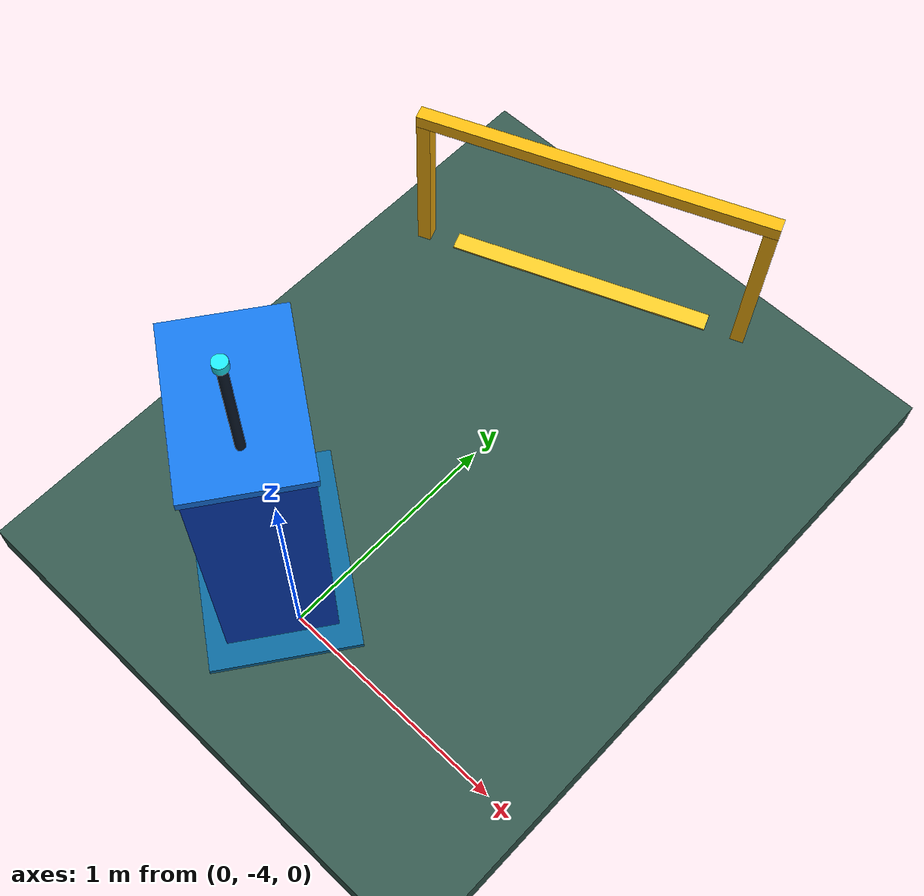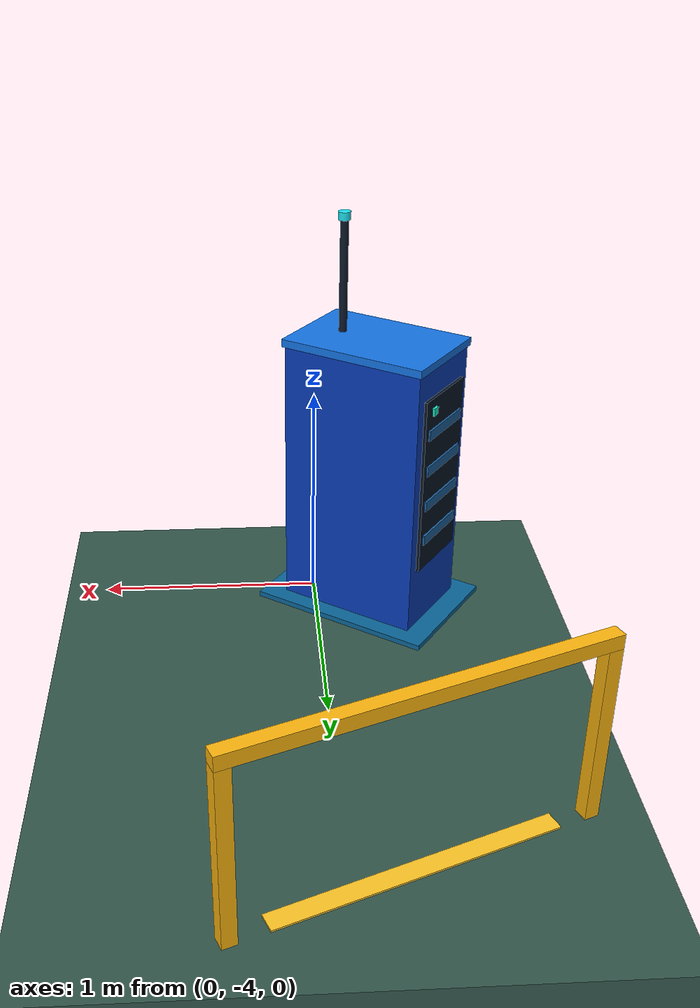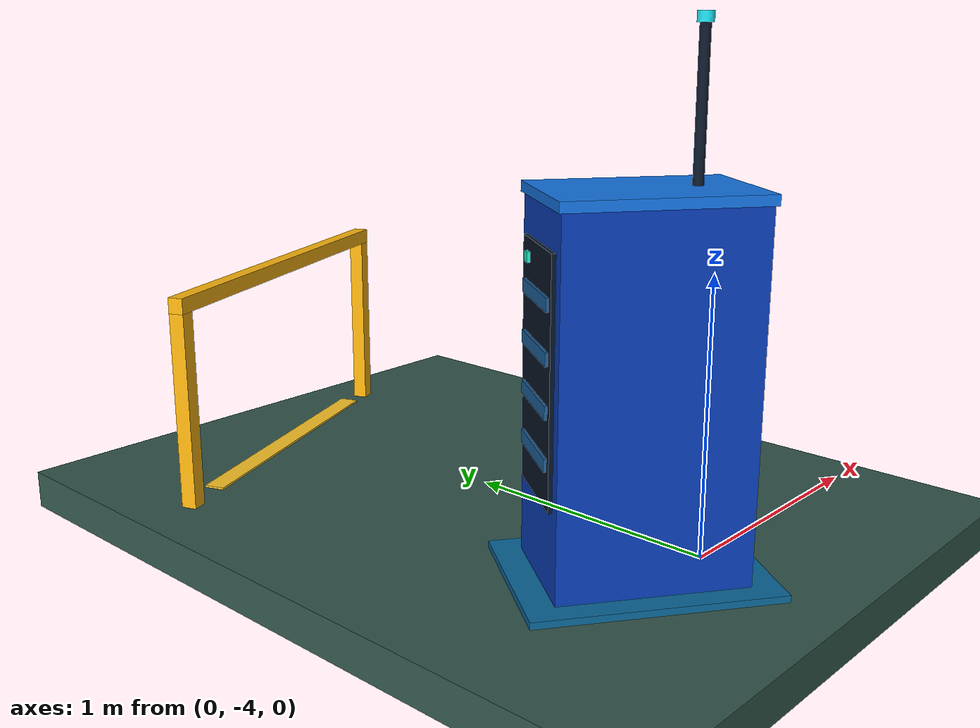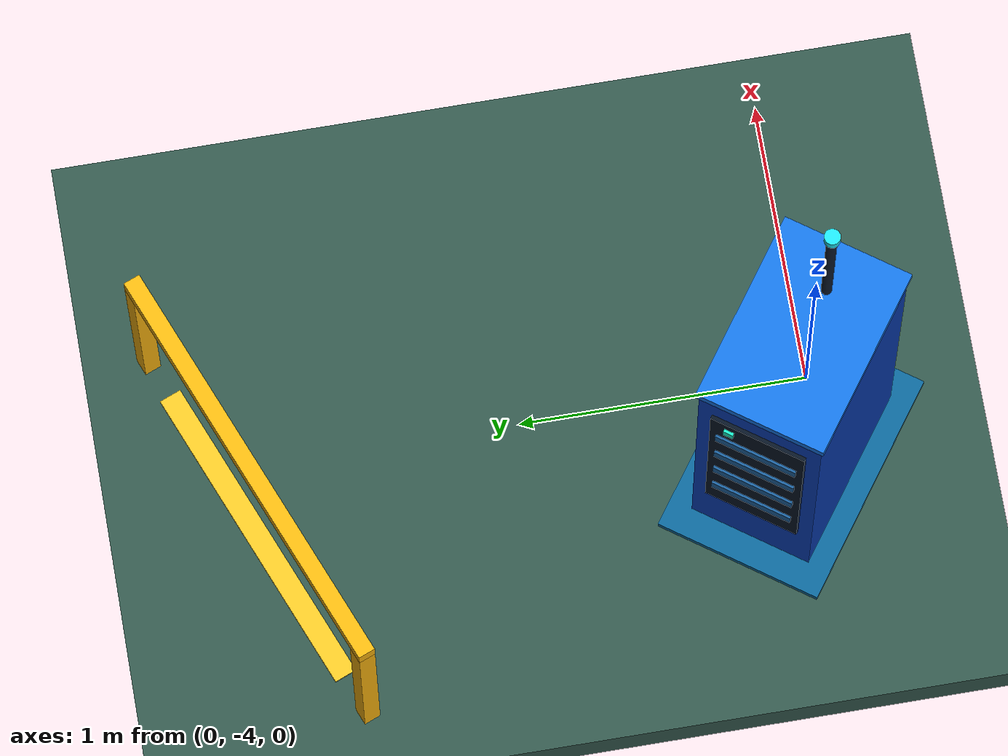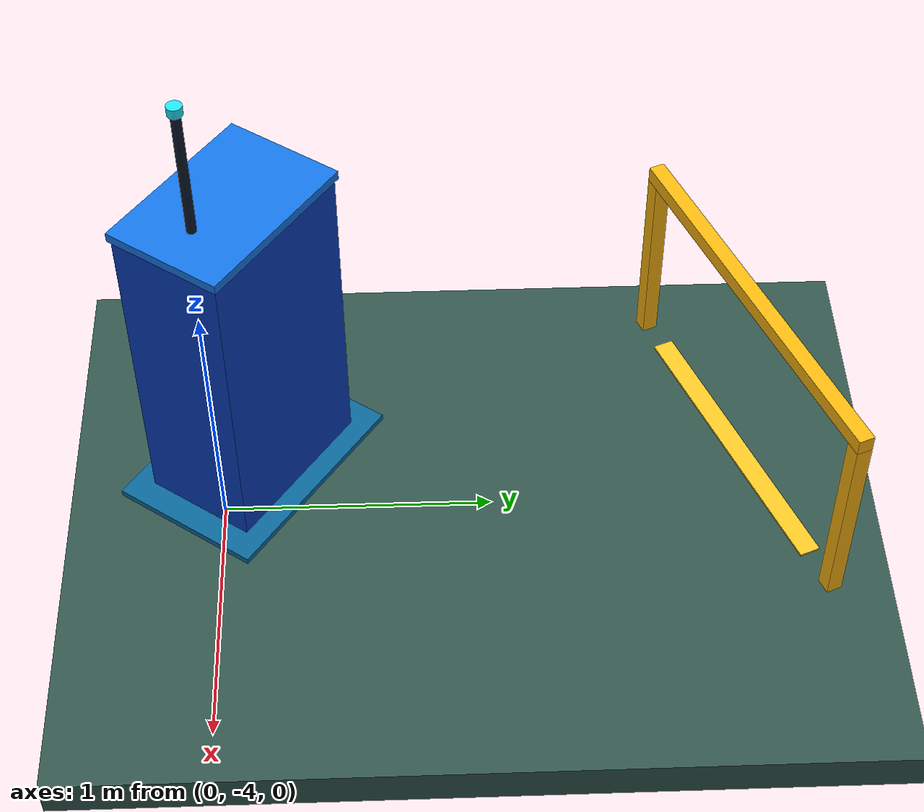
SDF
<sdf version="1.9">
 <world name="monaco">
  <model name="ground">
   <static>true</static>
   <link name="body">
    <visual name="ground">
     <pose>0 0 -0.08 0 0 0</pose>
     <geometry><box><size>100 100 0.15</size></box></geometry>
     <material><ambient>0.20 0.34 0.30 1</ambient><diffuse>0.20 0.34 0.30 1</diffuse></material>
    </visual>
    <collision name="ground_collision">
     <pose>0 0 -0.08 0 0 0</pose>
     <geometry><box><size>100 100 0.15</size></box></geometry>
    </collision>
   </link>
  </model>
  <model name="checkpoint_11">
   <static>true</static>
   <pose>-0.24535137952812047 -2.052995247491349 0 0 0 1.9525162955444766</pose>
   <link name="body">
    <visual name="stripe">
     <pose>0 0 0.016 0 0 0</pose>
     <geometry><box><size>0.08 1.17 0.008</size></box></geometry>
     <material><ambient>1 0.78 0.15 1</ambient><diffuse>1 0.78 0.15 1</diffuse></material>
    </visual>
    <visual name="post_-1">
     <pose>0 -0.73 0.38 0 0 0</pose>
     <geometry><box><size>0.06 0.06 0.76</size></box></geometry>
     <material><ambient>1 0.72 0.06 1</ambient><diffuse>1 0.72 0.06 1</diffuse></material>
    </visual>
    <visual name="post_1">
     <pose>0 0.73 0.38 0 0 0</pose>
     <geometry><box><size>0.06 0.06 0.76</size></box></geometry>
     <material><ambient>1 0.72 0.06 1</ambient><diffuse>1 0.72 0.06 1</diffuse></material>
    </visual>
    <visual name="overhead">
     <pose>0 0 0.79 0 0 0</pose>
     <geometry><box><size>0.06 1.52 0.06</size></box></geometry>
     <material><ambient>1 0.72 0.06 1</ambient><diffuse>1 0.72 0.06 1</diffuse></material>
    </visual>
   </link>
  </model>
  <model name="edge_10">
   <static>true</static>
   <pose>-0.26104164202007485 -3.900169181136712 0 0 0 2.5207701017671225</pose>
   <link name="body">
    <collision name="chassis_collision">
     <pose>0 0 0.14 0 0 0</pose>
     <geometry><box><size>0.64 0.32 0.13</size></box></geometry>
    </collision>
    <visual name="parking_bay">
     <pose>0 0 0.012 0 0 0</pose>
     <geometry><box><size>0.86 0.60 0.025</size></box></geometry>
     <material><ambient>0.04 0.40 0.60 1</ambient><diffuse>0.04 0.40 0.60 1</diffuse></material>
    </visual>
    <visual name="server_cabinet">
     <pose>0 0 0.65 0 0 0</pose>
     <geometry><box><size>0.66 0.44 1.25</size></box></geometry>
     <material><ambient>0.035 0.24 0.72 1</ambient><diffuse>0.035 0.24 0.72 1</diffuse></material>
    </visual>
    <visual name="cabinet_top">
     <pose>0 0 1.285 0 0 0</pose>
     <geometry><box><size>0.68 0.46 0.035</size></box></geometry>
     <material><ambient>0.08 0.46 0.90 1</ambient><diffuse>0.08 0.46 0.90 1</diffuse></material>
    </visual>
    <visual name="front_panel">
     <pose>0.337 0 0.73 0 0 0</pose>
     <geometry><box><size>0.014 0.34 0.82</size></box></geometry>
     <material><ambient>0.025 0.075 0.14 1</ambient><diffuse>0.025 0.075 0.14 1</diffuse></material>
    </visual>
    <visual name="rack_slot_0">
     <pose>0.347 0 0.47 0 0 0</pose>
     <geometry><box><size>0.012 0.29 0.045</size></box></geometry>
     <material><ambient>0.11 0.38 0.62 1</ambient><diffuse>0.11 0.38 0.62 1</diffuse></material>
    </visual>
    <visual name="rack_slot_1">
     <pose>0.347 0 0.64 0 0 0</pose>
     <geometry><box><size>0.012 0.29 0.045</size></box></geometry>
     <material><ambient>0.11 0.38 0.62 1</ambient><diffuse>0.11 0.38 0.62 1</diffuse></material>
    </visual>
    <visual name="rack_slot_2">
     <pose>0.347 0 0.81 0 0 0</pose>
     <geometry><box><size>0.012 0.29 0.045</size></box></geometry>
     <material><ambient>0.11 0.38 0.62 1</ambient><diffuse>0.11 0.38 0.62 1</diffuse></material>
    </visual>
    <visual name="rack_slot_3">
     <pose>0.347 0 0.98 0 0 0</pose>
     <geometry><box><size>0.012 0.29 0.045</size></box></geometry>
     <material><ambient>0.11 0.38 0.62 1</ambient><diffuse>0.11 0.38 0.62 1</diffuse></material>
    </visual>
    <visual name="status_light">
     <pose>0.347 -0.10 1.08 0 0 0</pose>
     <geometry><box><size>0.015 0.035 0.035</size></box></geometry>
     <material><ambient>0.10 0.95 0.80 1</ambient><diffuse>0.10 0.95 0.80 1</diffuse></material>
    </visual>
    <visual name="antenna">
     <pose>-0.17 0 1.55 0 0 0</pose>
     <geometry><cylinder><radius>0.018</radius><length>0.5</length></cylinder></geometry>
     <material><ambient>0.05 0.10 0.17 1</ambient><diffuse>0.05 0.10 0.17 1</diffuse></material>
    </visual>
    <visual name="antenna_tip">
     <pose>-0.17 0 1.81 0 0 0</pose>
     <geometry><cylinder><radius>0.027</radius><length>0.035</length></cylinder></geometry>
     <material><ambient>0.12 0.90 0.96 1</ambient><diffuse>0.12 0.90 0.96 1</diffuse></material>
    </visual>
   </link>
  </model>
 </world>
</sdf>
